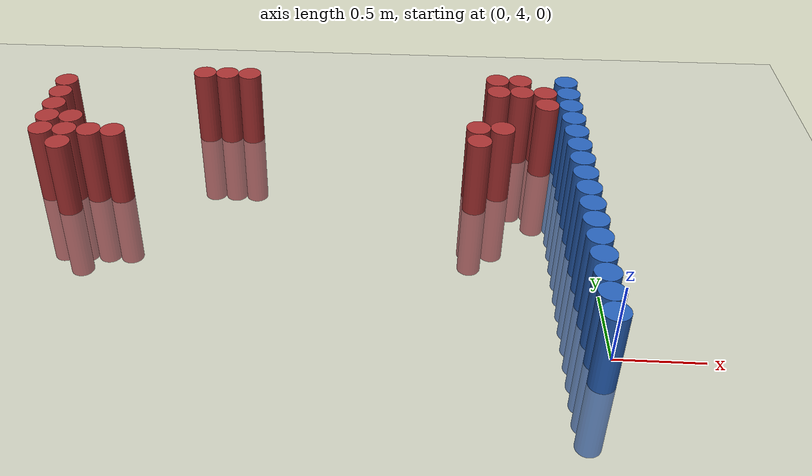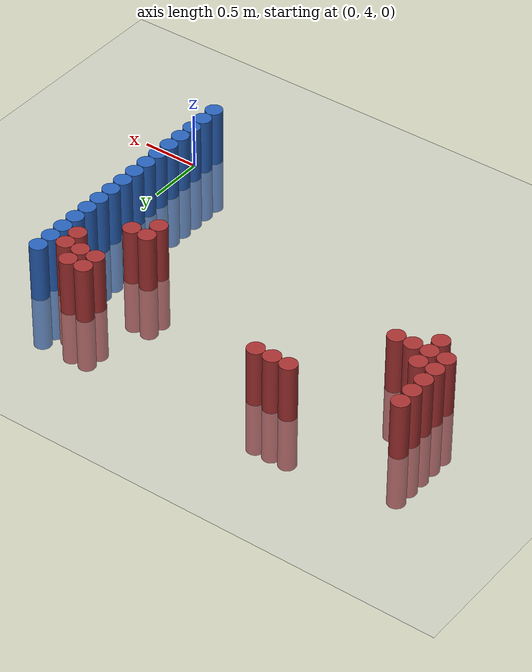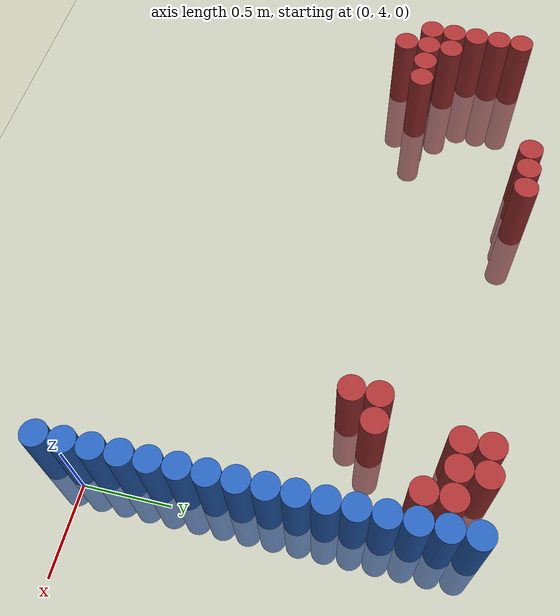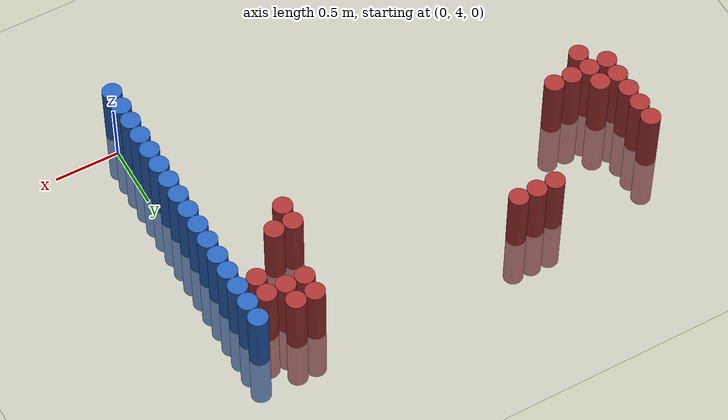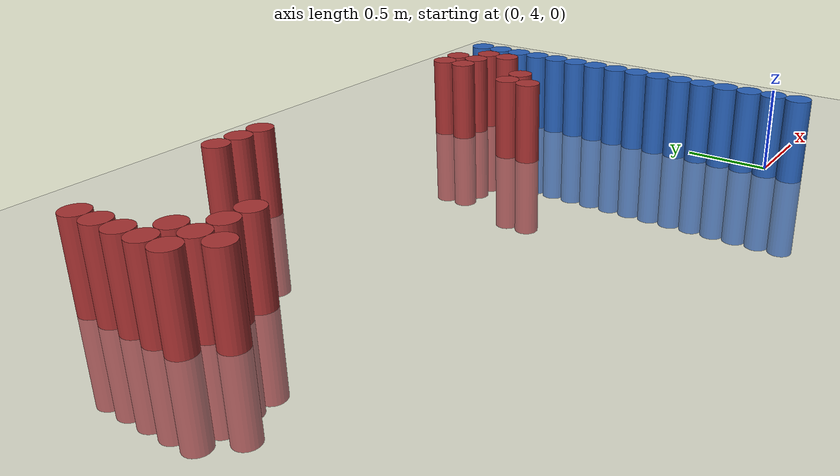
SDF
<sdf version="1.6">
 <world name="default">
  <model name="ground_plane">
   <static>1</static>
   <link name="link">
    <collision name="collision">
     <geometry><plane><normal>0 0 1</normal><size>100 100</size></plane></geometry>
     <surface><friction><ode><mu>100</mu><mu2>50</mu2></ode></friction></surface>
    </collision>
    <visual name="visual">
     <cast_shadows>0</cast_shadows>
     <geometry><plane><normal>0 0 1</normal><size>100 100</size></plane></geometry>
     <material>
      <script><uri>file://media/materials/scripts/gazebo.material</uri><name>Gazebo/Grey</name></script>
     </material>
    </visual>
   </link>
  </model>
  <model name="unit_cylinder_78">
   <static>1</static>
   <pose>-0.075000 3.825000 0.000000 0.000000 0.000000 0.000000</pose>
   <link name="link">
    <inertial>
     <mass>1</mass>
     <inertia><ixx>0.145833</ixx><ixy>0</ixy><ixz>0</ixz><iyy>0.145833</iyy><iyz>0</iyz><izz>0.125</izz></inertia>
    </inertial>
    <collision name="collision">
     <geometry><cylinder><radius>0.075000</radius><length>1</length></cylinder></geometry>
    </collision>
    <visual name="visual">
     <geometry><cylinder><radius>0.075000</radius><length>1</length></cylinder></geometry>
     <material>
      <ambient>0.152000 0.379000 0.720000 1</ambient>
      <diffuse>0.152000 0.379000 0.720000 1</diffuse>
     </material>
     <material>
      <script><name>Gazebo/Grey</name><uri>file://media/materials/scripts/gazebo.material</uri></script>
     </material>
    </visual>
    <sensor name="sensor_contact" type="contact"><contact><collision>collision</collision></contact></sensor>
   </link>
   <plugin filename="gz-sim-touchplugin-system" name="gz::sim::systems::TouchPlugin">
    <target>robot</target>
    <namespace>robot</namespace>
    <time>0.001</time>
    <enabled>true</enabled>
   </plugin>
  </model>
  <model name="unit_cylinder_80">
   <static>1</static>
   <pose>-0.075000 3.975000 0.000000 0.000000 0.000000 0.000000</pose>
   <link name="link">
    <inertial>
     <mass>1</mass>
     <inertia><ixx>0.145833</ixx><ixy>0</ixy><ixz>0</ixz><iyy>0.145833</iyy><iyz>0</iyz><izz>0.125</izz></inertia>
    </inertial>
    <collision name="collision">
     <geometry><cylinder><radius>0.075000</radius><length>1</length></cylinder></geometry>
    </collision>
    <visual name="visual">
     <geometry><cylinder><radius>0.075000</radius><length>1</length></cylinder></geometry>
     <material>
      <ambient>0.152000 0.379000 0.720000 1</ambient>
      <diffuse>0.152000 0.379000 0.720000 1</diffuse>
     </material>
     <material>
      <script><name>Gazebo/Grey</name><uri>file://media/materials/scripts/gazebo.material</uri></script>
     </material>
    </visual>
    <sensor name="sensor_contact" type="contact"><contact><collision>collision</collision></contact></sensor>
   </link>
   <plugin filename="gz-sim-touchplugin-system" name="gz::sim::systems::TouchPlugin">
    <target>robot</target>
    <namespace>robot</namespace>
    <time>0.001</time>
    <enabled>true</enabled>
   </plugin>
  </model>
  <model name="unit_cylinder_82">
   <static>1</static>
   <pose>-0.075000 4.125000 0.000000 0.000000 0.000000 0.000000</pose>
   <link name="link">
    <inertial>
     <mass>1</mass>
     <inertia><ixx>0.145833</ixx><ixy>0</ixy><ixz>0</ixz><iyy>0.145833</iyy><iyz>0</iyz><izz>0.125</izz></inertia>
    </inertial>
    <collision name="collision">
     <geometry><cylinder><radius>0.075000</radius><length>1</length></cylinder></geometry>
    </collision>
    <visual name="visual">
     <geometry><cylinder><radius>0.075000</radius><length>1</length></cylinder></geometry>
     <material>
      <ambient>0.152000 0.379000 0.720000 1</ambient>
      <diffuse>0.152000 0.379000 0.720000 1</diffuse>
     </material>
     <material>
      <script><name>Gazebo/Grey</name><uri>file://media/materials/scripts/gazebo.material</uri></script>
     </material>
    </visual>
    <sensor name="sensor_contact" type="contact"><contact><collision>collision</collision></contact></sensor>
   </link>
   <plugin filename="gz-sim-touchplugin-system" name="gz::sim::systems::TouchPlugin">
    <target>robot</target>
    <namespace>robot</namespace>
    <time>0.001</time>
    <enabled>true</enabled>
   </plugin>
  </model>
  <model name="unit_cylinder_84">
   <static>1</static>
   <pose>-0.075000 4.275000 0.000000 0.000000 0.000000 0.000000</pose>
   <link name="link">
    <inertial>
     <mass>1</mass>
     <inertia><ixx>0.145833</ixx><ixy>0</ixy><ixz>0</ixz><iyy>0.145833</iyy><iyz>0</iyz><izz>0.125</izz></inertia>
    </inertial>
    <collision name="collision">
     <geometry><cylinder><radius>0.075000</radius><length>1</length></cylinder></geometry>
    </collision>
    <visual name="visual">
     <geometry><cylinder><radius>0.075000</radius><length>1</length></cylinder></geometry>
     <material>
      <ambient>0.152000 0.379000 0.720000 1</ambient>
      <diffuse>0.152000 0.379000 0.720000 1</diffuse>
     </material>
     <material>
      <script><name>Gazebo/Grey</name><uri>file://media/materials/scripts/gazebo.material</uri></script>
     </material>
    </visual>
    <sensor name="sensor_contact" type="contact"><contact><collision>collision</collision></contact></sensor>
   </link>
   <plugin filename="gz-sim-touchplugin-system" name="gz::sim::systems::TouchPlugin">
    <target>robot</target>
    <namespace>robot</namespace>
    <time>0.001</time>
    <enabled>true</enabled>
   </plugin>
  </model>
  <model name="unit_cylinder_86">
   <static>1</static>
   <pose>-0.075000 4.425000 0.000000 0.000000 0.000000 0.000000</pose>
   <link name="link">
    <inertial>
     <mass>1</mass>
     <inertia><ixx>0.145833</ixx><ixy>0</ixy><ixz>0</ixz><iyy>0.145833</iyy><iyz>0</iyz><izz>0.125</izz></inertia>
    </inertial>
    <collision name="collision">
     <geometry><cylinder><radius>0.075000</radius><length>1</length></cylinder></geometry>
    </collision>
    <visual name="visual">
     <geometry><cylinder><radius>0.075000</radius><length>1</length></cylinder></geometry>
     <material>
      <ambient>0.152000 0.379000 0.720000 1</ambient>
      <diffuse>0.152000 0.379000 0.720000 1</diffuse>
     </material>
     <material>
      <script><name>Gazebo/Grey</name><uri>file://media/materials/scripts/gazebo.material</uri></script>
     </material>
    </visual>
    <sensor name="sensor_contact" type="contact"><contact><collision>collision</collision></contact></sensor>
   </link>
   <plugin filename="gz-sim-touchplugin-system" name="gz::sim::systems::TouchPlugin">
    <target>robot</target>
    <namespace>robot</namespace>
    <time>0.001</time>
    <enabled>true</enabled>
   </plugin>
  </model>
  <model name="unit_cylinder_88">
   <static>1</static>
   <pose>-0.075000 4.575000 0.000000 0.000000 0.000000 0.000000</pose>
   <link name="link">
    <inertial>
     <mass>1</mass>
     <inertia><ixx>0.145833</ixx><ixy>0</ixy><ixz>0</ixz><iyy>0.145833</iyy><iyz>0</iyz><izz>0.125</izz></inertia>
    </inertial>
    <collision name="collision">
     <geometry><cylinder><radius>0.075000</radius><length>1</length></cylinder></geometry>
    </collision>
    <visual name="visual">
     <geometry><cylinder><radius>0.075000</radius><length>1</length></cylinder></geometry>
     <material>
      <ambient>0.152000 0.379000 0.720000 1</ambient>
      <diffuse>0.152000 0.379000 0.720000 1</diffuse>
     </material>
     <material>
      <script><name>Gazebo/Grey</name><uri>file://media/materials/scripts/gazebo.material</uri></script>
     </material>
    </visual>
    <sensor name="sensor_contact" type="contact"><contact><collision>collision</collision></contact></sensor>
   </link>
   <plugin filename="gz-sim-touchplugin-system" name="gz::sim::systems::TouchPlugin">
    <target>robot</target>
    <namespace>robot</namespace>
    <time>0.001</time>
    <enabled>true</enabled>
   </plugin>
  </model>
  <model name="unit_cylinder_90">
   <static>1</static>
   <pose>-0.075000 4.725000 0.000000 0.000000 0.000000 0.000000</pose>
   <link name="link">
    <inertial>
     <mass>1</mass>
     <inertia><ixx>0.145833</ixx><ixy>0</ixy><ixz>0</ixz><iyy>0.145833</iyy><iyz>0</iyz><izz>0.125</izz></inertia>
    </inertial>
    <collision name="collision">
     <geometry><cylinder><radius>0.075000</radius><length>1</length></cylinder></geometry>
    </collision>
    <visual name="visual">
     <geometry><cylinder><radius>0.075000</radius><length>1</length></cylinder></geometry>
     <material>
      <ambient>0.152000 0.379000 0.720000 1</ambient>
      <diffuse>0.152000 0.379000 0.720000 1</diffuse>
     </material>
     <material>
      <script><name>Gazebo/Grey</name><uri>file://media/materials/scripts/gazebo.material</uri></script>
     </material>
    </visual>
    <sensor name="sensor_contact" type="contact"><contact><collision>collision</collision></contact></sensor>
   </link>
   <plugin filename="gz-sim-touchplugin-system" name="gz::sim::systems::TouchPlugin">
    <target>robot</target>
    <namespace>robot</namespace>
    <time>0.001</time>
    <enabled>true</enabled>
   </plugin>
  </model>
  <model name="unit_cylinder_92">
   <static>1</static>
   <pose>-0.075000 4.875000 0.000000 0.000000 0.000000 0.000000</pose>
   <link name="link">
    <inertial>
     <mass>1</mass>
     <inertia><ixx>0.145833</ixx><ixy>0</ixy><ixz>0</ixz><iyy>0.145833</iyy><iyz>0</iyz><izz>0.125</izz></inertia>
    </inertial>
    <collision name="collision">
     <geometry><cylinder><radius>0.075000</radius><length>1</length></cylinder></geometry>
    </collision>
    <visual name="visual">
     <geometry><cylinder><radius>0.075000</radius><length>1</length></cylinder></geometry>
     <material>
      <ambient>0.152000 0.379000 0.720000 1</ambient>
      <diffuse>0.152000 0.379000 0.720000 1</diffuse>
     </material>
     <material>
      <script><name>Gazebo/Grey</name><uri>file://media/materials/scripts/gazebo.material</uri></script>
     </material>
    </visual>
    <sensor name="sensor_contact" type="contact"><contact><collision>collision</collision></contact></sensor>
   </link>
   <plugin filename="gz-sim-touchplugin-system" name="gz::sim::systems::TouchPlugin">
    <target>robot</target>
    <namespace>robot</namespace>
    <time>0.001</time>
    <enabled>true</enabled>
   </plugin>
  </model>
  <model name="unit_cylinder_94">
   <static>1</static>
   <pose>-0.075000 5.025000 0.000000 0.000000 0.000000 0.000000</pose>
   <link name="link">
    <inertial>
     <mass>1</mass>
     <inertia><ixx>0.145833</ixx><ixy>0</ixy><ixz>0</ixz><iyy>0.145833</iyy><iyz>0</iyz><izz>0.125</izz></inertia>
    </inertial>
    <collision name="collision">
     <geometry><cylinder><radius>0.075000</radius><length>1</length></cylinder></geometry>
    </collision>
    <visual name="visual">
     <geometry><cylinder><radius>0.075000</radius><length>1</length></cylinder></geometry>
     <material>
      <ambient>0.152000 0.379000 0.720000 1</ambient>
      <diffuse>0.152000 0.379000 0.720000 1</diffuse>
     </material>
     <material>
      <script><name>Gazebo/Grey</name><uri>file://media/materials/scripts/gazebo.material</uri></script>
     </material>
    </visual>
    <sensor name="sensor_contact" type="contact"><contact><collision>collision</collision></contact></sensor>
   </link>
   <plugin filename="gz-sim-touchplugin-system" name="gz::sim::systems::TouchPlugin">
    <target>robot</target>
    <namespace>robot</namespace>
    <time>0.001</time>
    <enabled>true</enabled>
   </plugin>
  </model>
  <model name="unit_cylinder_175">
   <static>1</static>
   <pose>-3.375000 5.325000 0.000000 0.000000 0.000000 0.000000</pose>
   <link name="link">
    <inertial>
     <mass>1</mass>
     <inertia><ixx>0.145833</ixx><ixy>0</ixy><ixz>0</ixz><iyy>0.145833</iyy><iyz>0</iyz><izz>0.125</izz></inertia>
    </inertial>
    <collision name="collision">
     <geometry><cylinder><radius>0.075000</radius><length>1</length></cylinder></geometry>
    </collision>
    <visual name="visual">
     <geometry><cylinder><radius>0.075000</radius><length>1</length></cylinder></geometry>
     <material>
      <ambient>0.648000 0.192000 0.192000 1</ambient>
      <diffuse>0.648000 0.192000 0.192000 1</diffuse>
     </material>
     <material>
      <script><name>Gazebo/Grey</name><uri>file://media/materials/scripts/gazebo.material</uri></script>
     </material>
    </visual>
    <sensor name="sensor_contact" type="contact"><contact><collision>collision</collision></contact></sensor>
   </link>
   <plugin filename="gz-sim-touchplugin-system" name="gz::sim::systems::TouchPlugin">
    <target>robot</target>
    <namespace>robot</namespace>
    <time>0.001</time>
    <enabled>true</enabled>
   </plugin>
  </model>
  <model name="unit_cylinder_176">
   <static>1</static>
   <pose>-3.375000 5.475000 0.000000 0.000000 0.000000 0.000000</pose>
   <link name="link">
    <inertial>
     <mass>1</mass>
     <inertia><ixx>0.145833</ixx><ixy>0</ixy><ixz>0</ixz><iyy>0.145833</iyy><iyz>0</iyz><izz>0.125</izz></inertia>
    </inertial>
    <collision name="collision">
     <geometry><cylinder><radius>0.075000</radius><length>1</length></cylinder></geometry>
    </collision>
    <visual name="visual">
     <geometry><cylinder><radius>0.075000</radius><length>1</length></cylinder></geometry>
     <material>
      <ambient>0.648000 0.192000 0.192000 1</ambient>
      <diffuse>0.648000 0.192000 0.192000 1</diffuse>
     </material>
     <material>
      <script><name>Gazebo/Grey</name><uri>file://media/materials/scripts/gazebo.material</uri></script>
     </material>
    </visual>
    <sensor name="sensor_contact" type="contact"><contact><collision>collision</collision></contact></sensor>
   </link>
   <plugin filename="gz-sim-touchplugin-system" name="gz::sim::systems::TouchPlugin">
    <target>robot</target>
    <namespace>robot</namespace>
    <time>0.001</time>
    <enabled>true</enabled>
   </plugin>
  </model>
  <model name="unit_cylinder_177">
   <static>1</static>
   <pose>-3.375000 5.625000 0.000000 0.000000 0.000000 0.000000</pose>
   <link name="link">
    <inertial>
     <mass>1</mass>
     <inertia><ixx>0.145833</ixx><ixy>0</ixy><ixz>0</ixz><iyy>0.145833</iyy><iyz>0</iyz><izz>0.125</izz></inertia>
    </inertial>
    <collision name="collision">
     <geometry><cylinder><radius>0.075000</radius><length>1</length></cylinder></geometry>
    </collision>
    <visual name="visual">
     <geometry><cylinder><radius>0.075000</radius><length>1</length></cylinder></geometry>
     <material>
      <ambient>0.648000 0.192000 0.192000 1</ambient>
      <diffuse>0.648000 0.192000 0.192000 1</diffuse>
     </material>
     <material>
      <script><name>Gazebo/Grey</name><uri>file://media/materials/scripts/gazebo.material</uri></script>
     </material>
    </visual>
    <sensor name="sensor_contact" type="contact"><contact><collision>collision</collision></contact></sensor>
   </link>
   <plugin filename="gz-sim-touchplugin-system" name="gz::sim::systems::TouchPlugin">
    <target>robot</target>
    <namespace>robot</namespace>
    <time>0.001</time>
    <enabled>true</enabled>
   </plugin>
  </model>
  <model name="unit_cylinder_178">
   <static>1</static>
   <pose>-3.375000 5.775000 0.000000 0.000000 0.000000 0.000000</pose>
   <link name="link">
    <inertial>
     <mass>1</mass>
     <inertia><ixx>0.145833</ixx><ixy>0</ixy><ixz>0</ixz><iyy>0.145833</iyy><iyz>0</iyz><izz>0.125</izz></inertia>
    </inertial>
    <collision name="collision">
     <geometry><cylinder><radius>0.075000</radius><length>1</length></cylinder></geometry>
    </collision>
    <visual name="visual">
     <geometry><cylinder><radius>0.075000</radius><length>1</length></cylinder></geometry>
     <material>
      <ambient>0.648000 0.192000 0.192000 1</ambient>
      <diffuse>0.648000 0.192000 0.192000 1</diffuse>
     </material>
     <material>
      <script><name>Gazebo/Grey</name><uri>file://media/materials/scripts/gazebo.material</uri></script>
     </material>
    </visual>
    <sensor name="sensor_contact" type="contact"><contact><collision>collision</collision></contact></sensor>
   </link>
   <plugin filename="gz-sim-touchplugin-system" name="gz::sim::systems::TouchPlugin">
    <target>robot</target>
    <namespace>robot</namespace>
    <time>0.001</time>
    <enabled>true</enabled>
   </plugin>
  </model>
  <model name="unit_cylinder_179">
   <static>1</static>
   <pose>-3.375000 5.925000 0.000000 0.000000 0.000000 0.000000</pose>
   <link name="link">
    <inertial>
     <mass>1</mass>
     <inertia><ixx>0.145833</ixx><ixy>0</ixy><ixz>0</ixz><iyy>0.145833</iyy><iyz>0</iyz><izz>0.125</izz></inertia>
    </inertial>
    <collision name="collision">
     <geometry><cylinder><radius>0.075000</radius><length>1</length></cylinder></geometry>
    </collision>
    <visual name="visual">
     <geometry><cylinder><radius>0.075000</radius><length>1</length></cylinder></geometry>
     <material>
      <ambient>0.648000 0.192000 0.192000 1</ambient>
      <diffuse>0.648000 0.192000 0.192000 1</diffuse>
     </material>
     <material>
      <script><name>Gazebo/Grey</name><uri>file://media/materials/scripts/gazebo.material</uri></script>
     </material>
    </visual>
    <sensor name="sensor_contact" type="contact"><contact><collision>collision</collision></contact></sensor>
   </link>
   <plugin filename="gz-sim-touchplugin-system" name="gz::sim::systems::TouchPlugin">
    <target>robot</target>
    <namespace>robot</namespace>
    <time>0.001</time>
    <enabled>true</enabled>
   </plugin>
  </model>
  <model name="unit_cylinder_182">
   <static>1</static>
   <pose>-3.225000 5.175000 0.000000 0.000000 0.000000 0.000000</pose>
   <link name="link">
    <inertial>
     <mass>1</mass>
     <inertia><ixx>0.145833</ixx><ixy>0</ixy><ixz>0</ixz><iyy>0.145833</iyy><iyz>0</iyz><izz>0.125</izz></inertia>
    </inertial>
    <collision name="collision">
     <geometry><cylinder><radius>0.075000</radius><length>1</length></cylinder></geometry>
    </collision>
    <visual name="visual">
     <geometry><cylinder><radius>0.075000</radius><length>1</length></cylinder></geometry>
     <material>
      <ambient>0.648000 0.192000 0.192000 1</ambient>
      <diffuse>0.648000 0.192000 0.192000 1</diffuse>
     </material>
     <material>
      <script><name>Gazebo/Grey</name><uri>file://media/materials/scripts/gazebo.material</uri></script>
     </material>
    </visual>
    <sensor name="sensor_contact" type="contact"><contact><collision>collision</collision></contact></sensor>
   </link>
   <plugin filename="gz-sim-touchplugin-system" name="gz::sim::systems::TouchPlugin">
    <target>robot</target>
    <namespace>robot</namespace>
    <time>0.001</time>
    <enabled>true</enabled>
   </plugin>
  </model>
  <model name="unit_cylinder_183">
   <static>1</static>
   <pose>-3.225000 5.325000 0.000000 0.000000 0.000000 0.000000</pose>
   <link name="link">
    <inertial>
     <mass>1</mass>
     <inertia><ixx>0.145833</ixx><ixy>0</ixy><ixz>0</ixz><iyy>0.145833</iyy><iyz>0</iyz><izz>0.125</izz></inertia>
    </inertial>
    <collision name="collision">
     <geometry><cylinder><radius>0.075000</radius><length>1</length></cylinder></geometry>
    </collision>
    <visual name="visual">
     <geometry><cylinder><radius>0.075000</radius><length>1</length></cylinder></geometry>
     <material>
      <ambient>0.648000 0.192000 0.192000 1</ambient>
      <diffuse>0.648000 0.192000 0.192000 1</diffuse>
     </material>
     <material>
      <script><name>Gazebo/Grey</name><uri>file://media/materials/scripts/gazebo.material</uri></script>
     </material>
    </visual>
    <sensor name="sensor_contact" type="contact"><contact><collision>collision</collision></contact></sensor>
   </link>
   <plugin filename="gz-sim-touchplugin-system" name="gz::sim::systems::TouchPlugin">
    <target>robot</target>
    <namespace>robot</namespace>
    <time>0.001</time>
    <enabled>true</enabled>
   </plugin>
  </model>
  <model name="unit_cylinder_184">
   <static>1</static>
   <pose>-3.225000 5.475000 0.000000 0.000000 0.000000 0.000000</pose>
   <link name="link">
    <inertial>
     <mass>1</mass>
     <inertia><ixx>0.145833</ixx><ixy>0</ixy><ixz>0</ixz><iyy>0.145833</iyy><iyz>0</iyz><izz>0.125</izz></inertia>
    </inertial>
    <collision name="collision">
     <geometry><cylinder><radius>0.075000</radius><length>1</length></cylinder></geometry>
    </collision>
    <visual name="visual">
     <geometry><cylinder><radius>0.075000</radius><length>1</length></cylinder></geometry>
     <material>
      <ambient>0.648000 0.192000 0.192000 1</ambient>
      <diffuse>0.648000 0.192000 0.192000 1</diffuse>
     </material>
     <material>
      <script><name>Gazebo/Grey</name><uri>file://media/materials/scripts/gazebo.material</uri></script>
     </material>
    </visual>
    <sensor name="sensor_contact" type="contact"><contact><collision>collision</collision></contact></sensor>
   </link>
   <plugin filename="gz-sim-touchplugin-system" name="gz::sim::systems::TouchPlugin">
    <target>robot</target>
    <namespace>robot</namespace>
    <time>0.001</time>
    <enabled>true</enabled>
   </plugin>
  </model>
  <model name="unit_cylinder_190">
   <static>1</static>
   <pose>-3.075000 5.325000 0.000000 0.000000 0.000000 0.000000</pose>
   <link name="link">
    <inertial>
     <mass>1</mass>
     <inertia><ixx>0.145833</ixx><ixy>0</ixy><ixz>0</ixz><iyy>0.145833</iyy><iyz>0</iyz><izz>0.125</izz></inertia>
    </inertial>
    <collision name="collision">
     <geometry><cylinder><radius>0.075000</radius><length>1</length></cylinder></geometry>
    </collision>
    <visual name="visual">
     <geometry><cylinder><radius>0.075000</radius><length>1</length></cylinder></geometry>
     <material>
      <ambient>0.648000 0.192000 0.192000 1</ambient>
      <diffuse>0.648000 0.192000 0.192000 1</diffuse>
     </material>
     <material>
      <script><name>Gazebo/Grey</name><uri>file://media/materials/scripts/gazebo.material</uri></script>
     </material>
    </visual>
    <sensor name="sensor_contact" type="contact"><contact><collision>collision</collision></contact></sensor>
   </link>
   <plugin filename="gz-sim-touchplugin-system" name="gz::sim::systems::TouchPlugin">
    <target>robot</target>
    <namespace>robot</namespace>
    <time>0.001</time>
    <enabled>true</enabled>
   </plugin>
  </model>
  <model name="unit_cylinder_196">
   <static>1</static>
   <pose>-2.925000 5.325000 0.000000 0.000000 0.000000 0.000000</pose>
   <link name="link">
    <inertial>
     <mass>1</mass>
     <inertia><ixx>0.145833</ixx><ixy>0</ixy><ixz>0</ixz><iyy>0.145833</iyy><iyz>0</iyz><izz>0.125</izz></inertia>
    </inertial>
    <collision name="collision">
     <geometry><cylinder><radius>0.075000</radius><length>1</length></cylinder></geometry>
    </collision>
    <visual name="visual">
     <geometry><cylinder><radius>0.075000</radius><length>1</length></cylinder></geometry>
     <material>
      <ambient>0.648000 0.192000 0.192000 1</ambient>
      <diffuse>0.648000 0.192000 0.192000 1</diffuse>
     </material>
     <material>
      <script><name>Gazebo/Grey</name><uri>file://media/materials/scripts/gazebo.material</uri></script>
     </material>
    </visual>
    <sensor name="sensor_contact" type="contact"><contact><collision>collision</collision></contact></sensor>
   </link>
   <plugin filename="gz-sim-touchplugin-system" name="gz::sim::systems::TouchPlugin">
    <target>robot</target>
    <namespace>robot</namespace>
    <time>0.001</time>
    <enabled>true</enabled>
   </plugin>
  </model>
  <model name="unit_cylinder_205">
   <static>1</static>
   <pose>-2.475000 6.075000 0.000000 0.000000 0.000000 0.000000</pose>
   <link name="link">
    <inertial>
     <mass>1</mass>
     <inertia><ixx>0.145833</ixx><ixy>0</ixy><ixz>0</ixz><iyy>0.145833</iyy><iyz>0</iyz><izz>0.125</izz></inertia>
    </inertial>
    <collision name="collision">
     <geometry><cylinder><radius>0.075000</radius><length>1</length></cylinder></geometry>
    </collision>
    <visual name="visual">
     <geometry><cylinder><radius>0.075000</radius><length>1</length></cylinder></geometry>
     <material>
      <ambient>0.648000 0.192000 0.192000 1</ambient>
      <diffuse>0.648000 0.192000 0.192000 1</diffuse>
     </material>
     <material>
      <script><name>Gazebo/Grey</name><uri>file://media/materials/scripts/gazebo.material</uri></script>
     </material>
    </visual>
    <sensor name="sensor_contact" type="contact"><contact><collision>collision</collision></contact></sensor>
   </link>
   <plugin filename="gz-sim-touchplugin-system" name="gz::sim::systems::TouchPlugin">
    <target>robot</target>
    <namespace>robot</namespace>
    <time>0.001</time>
    <enabled>true</enabled>
   </plugin>
  </model>
  <model name="unit_cylinder_207">
   <static>1</static>
   <pose>-2.325000 6.075000 0.000000 0.000000 0.000000 0.000000</pose>
   <link name="link">
    <inertial>
     <mass>1</mass>
     <inertia><ixx>0.145833</ixx><ixy>0</ixy><ixz>0</ixz><iyy>0.145833</iyy><iyz>0</iyz><izz>0.125</izz></inertia>
    </inertial>
    <collision name="collision">
     <geometry><cylinder><radius>0.075000</radius><length>1</length></cylinder></geometry>
    </collision>
    <visual name="visual">
     <geometry><cylinder><radius>0.075000</radius><length>1</length></cylinder></geometry>
     <material>
      <ambient>0.648000 0.192000 0.192000 1</ambient>
      <diffuse>0.648000 0.192000 0.192000 1</diffuse>
     </material>
     <material>
      <script><name>Gazebo/Grey</name><uri>file://media/materials/scripts/gazebo.material</uri></script>
     </material>
    </visual>
    <sensor name="sensor_contact" type="contact"><contact><collision>collision</collision></contact></sensor>
   </link>
   <plugin filename="gz-sim-touchplugin-system" name="gz::sim::systems::TouchPlugin">
    <target>robot</target>
    <namespace>robot</namespace>
    <time>0.001</time>
    <enabled>true</enabled>
   </plugin>
  </model>
  <model name="unit_cylinder_211">
   <static>1</static>
   <pose>-2.175000 6.075000 0.000000 0.000000 0.000000 0.000000</pose>
   <link name="link">
    <inertial>
     <mass>1</mass>
     <inertia><ixx>0.145833</ixx><ixy>0</ixy><ixz>0</ixz><iyy>0.145833</iyy><iyz>0</iyz><izz>0.125</izz></inertia>
    </inertial>
    <collision name="collision">
     <geometry><cylinder><radius>0.075000</radius><length>1</length></cylinder></geometry>
    </collision>
    <visual name="visual">
     <geometry><cylinder><radius>0.075000</radius><length>1</length></cylinder></geometry>
     <material>
      <ambient>0.648000 0.192000 0.192000 1</ambient>
      <diffuse>0.648000 0.192000 0.192000 1</diffuse>
     </material>
     <material>
      <script><name>Gazebo/Grey</name><uri>file://media/materials/scripts/gazebo.material</uri></script>
     </material>
    </visual>
    <sensor name="sensor_contact" type="contact"><contact><collision>collision</collision></contact></sensor>
   </link>
   <plugin filename="gz-sim-touchplugin-system" name="gz::sim::systems::TouchPlugin">
    <target>robot</target>
    <namespace>robot</namespace>
    <time>0.001</time>
    <enabled>true</enabled>
   </plugin>
  </model>
  <model name="unit_cylinder_241">
   <static>1</static>
   <pose>-0.675000 5.325000 0.000000 0.000000 0.000000 0.000000</pose>
   <link name="link">
    <inertial>
     <mass>1</mass>
     <inertia><ixx>0.145833</ixx><ixy>0</ixy><ixz>0</ixz><iyy>0.145833</iyy><iyz>0</iyz><izz>0.125</izz></inertia>
    </inertial>
    <collision name="collision">
     <geometry><cylinder><radius>0.075000</radius><length>1</length></cylinder></geometry>
    </collision>
    <visual name="visual">
     <geometry><cylinder><radius>0.075000</radius><length>1</length></cylinder></geometry>
     <material>
      <ambient>0.648000 0.192000 0.192000 1</ambient>
      <diffuse>0.648000 0.192000 0.192000 1</diffuse>
     </material>
     <material>
      <script><name>Gazebo/Grey</name><uri>file://media/materials/scripts/gazebo.material</uri></script>
     </material>
    </visual>
    <sensor name="sensor_contact" type="contact"><contact><collision>collision</collision></contact></sensor>
   </link>
   <plugin filename="gz-sim-touchplugin-system" name="gz::sim::systems::TouchPlugin">
    <target>robot</target>
    <namespace>robot</namespace>
    <time>0.001</time>
    <enabled>true</enabled>
   </plugin>
  </model>
  <model name="unit_cylinder_242">
   <static>1</static>
   <pose>-0.675000 5.475000 0.000000 0.000000 0.000000 0.000000</pose>
   <link name="link">
    <inertial>
     <mass>1</mass>
     <inertia><ixx>0.145833</ixx><ixy>0</ixy><ixz>0</ixz><iyy>0.145833</iyy><iyz>0</iyz><izz>0.125</izz></inertia>
    </inertial>
    <collision name="collision">
     <geometry><cylinder><radius>0.075000</radius><length>1</length></cylinder></geometry>
    </collision>
    <visual name="visual">
     <geometry><cylinder><radius>0.075000</radius><length>1</length></cylinder></geometry>
     <material>
      <ambient>0.648000 0.192000 0.192000 1</ambient>
      <diffuse>0.648000 0.192000 0.192000 1</diffuse>
     </material>
     <material>
      <script><name>Gazebo/Grey</name><uri>file://media/materials/scripts/gazebo.material</uri></script>
     </material>
    </visual>
    <sensor name="sensor_contact" type="contact"><contact><collision>collision</collision></contact></sensor>
   </link>
   <plugin filename="gz-sim-touchplugin-system" name="gz::sim::systems::TouchPlugin">
    <target>robot</target>
    <namespace>robot</namespace>
    <time>0.001</time>
    <enabled>true</enabled>
   </plugin>
  </model>
  <model name="unit_cylinder_247">
   <static>1</static>
   <pose>-0.525000 5.475000 0.000000 0.000000 0.000000 0.000000</pose>
   <link name="link">
    <inertial>
     <mass>1</mass>
     <inertia><ixx>0.145833</ixx><ixy>0</ixy><ixz>0</ixz><iyy>0.145833</iyy><iyz>0</iyz><izz>0.125</izz></inertia>
    </inertial>
    <collision name="collision">
     <geometry><cylinder><radius>0.075000</radius><length>1</length></cylinder></geometry>
    </collision>
    <visual name="visual">
     <geometry><cylinder><radius>0.075000</radius><length>1</length></cylinder></geometry>
     <material>
      <ambient>0.648000 0.192000 0.192000 1</ambient>
      <diffuse>0.648000 0.192000 0.192000 1</diffuse>
     </material>
     <material>
      <script><name>Gazebo/Grey</name><uri>file://media/materials/scripts/gazebo.material</uri></script>
     </material>
    </visual>
    <sensor name="sensor_contact" type="contact"><contact><collision>collision</collision></contact></sensor>
   </link>
   <plugin filename="gz-sim-touchplugin-system" name="gz::sim::systems::TouchPlugin">
    <target>robot</target>
    <namespace>robot</namespace>
    <time>0.001</time>
    <enabled>true</enabled>
   </plugin>
  </model>
  <model name="unit_cylinder_248">
   <static>1</static>
   <pose>-0.525000 5.925000 0.000000 0.000000 0.000000 0.000000</pose>
   <link name="link">
    <inertial>
     <mass>1</mass>
     <inertia><ixx>0.145833</ixx><ixy>0</ixy><ixz>0</ixz><iyy>0.145833</iyy><iyz>0</iyz><izz>0.125</izz></inertia>
    </inertial>
    <collision name="collision">
     <geometry><cylinder><radius>0.075000</radius><length>1</length></cylinder></geometry>
    </collision>
    <visual name="visual">
     <geometry><cylinder><radius>0.075000</radius><length>1</length></cylinder></geometry>
     <material>
      <ambient>0.648000 0.192000 0.192000 1</ambient>
      <diffuse>0.648000 0.192000 0.192000 1</diffuse>
     </material>
     <material>
      <script><name>Gazebo/Grey</name><uri>file://media/materials/scripts/gazebo.material</uri></script>
     </material>
    </visual>
    <sensor name="sensor_contact" type="contact"><contact><collision>collision</collision></contact></sensor>
   </link>
   <plugin filename="gz-sim-touchplugin-system" name="gz::sim::systems::TouchPlugin">
    <target>robot</target>
    <namespace>robot</namespace>
    <time>0.001</time>
    <enabled>true</enabled>
   </plugin>
  </model>
  <model name="unit_cylinder_249">
   <static>1</static>
   <pose>-0.525000 6.075000 0.000000 0.000000 0.000000 0.000000</pose>
   <link name="link">
    <inertial>
     <mass>1</mass>
     <inertia><ixx>0.145833</ixx><ixy>0</ixy><ixz>0</ixz><iyy>0.145833</iyy><iyz>0</iyz><izz>0.125</izz></inertia>
    </inertial>
    <collision name="collision">
     <geometry><cylinder><radius>0.075000</radius><length>1</length></cylinder></geometry>
    </collision>
    <visual name="visual">
     <geometry><cylinder><radius>0.075000</radius><length>1</length></cylinder></geometry>
     <material>
      <ambient>0.648000 0.192000 0.192000 1</ambient>
      <diffuse>0.648000 0.192000 0.192000 1</diffuse>
     </material>
     <material>
      <script><name>Gazebo/Grey</name><uri>file://media/materials/scripts/gazebo.material</uri></script>
     </material>
    </visual>
    <sensor name="sensor_contact" type="contact"><contact><collision>collision</collision></contact></sensor>
   </link>
   <plugin filename="gz-sim-touchplugin-system" name="gz::sim::systems::TouchPlugin">
    <target>robot</target>
    <namespace>robot</namespace>
    <time>0.001</time>
    <enabled>true</enabled>
   </plugin>
  </model>
  <model name="unit_cylinder_259">
   <static>1</static>
   <pose>-0.375000 5.925000 0.000000 0.000000 0.000000 0.000000</pose>
   <link name="link">
    <inertial>
     <mass>1</mass>
     <inertia><ixx>0.145833</ixx><ixy>0</ixy><ixz>0</ixz><iyy>0.145833</iyy><iyz>0</iyz><izz>0.125</izz></inertia>
    </inertial>
    <collision name="collision">
     <geometry><cylinder><radius>0.075000</radius><length>1</length></cylinder></geometry>
    </collision>
    <visual name="visual">
     <geometry><cylinder><radius>0.075000</radius><length>1</length></cylinder></geometry>
     <material>
      <ambient>0.648000 0.192000 0.192000 1</ambient>
      <diffuse>0.648000 0.192000 0.192000 1</diffuse>
     </material>
     <material>
      <script><name>Gazebo/Grey</name><uri>file://media/materials/scripts/gazebo.material</uri></script>
     </material>
    </visual>
    <sensor name="sensor_contact" type="contact"><contact><collision>collision</collision></contact></sensor>
   </link>
   <plugin filename="gz-sim-touchplugin-system" name="gz::sim::systems::TouchPlugin">
    <target>robot</target>
    <namespace>robot</namespace>
    <time>0.001</time>
    <enabled>true</enabled>
   </plugin>
  </model>
  <model name="unit_cylinder_260">
   <static>1</static>
   <pose>-0.375000 6.075000 0.000000 0.000000 0.000000 0.000000</pose>
   <link name="link">
    <inertial>
     <mass>1</mass>
     <inertia><ixx>0.145833</ixx><ixy>0</ixy><ixz>0</ixz><iyy>0.145833</iyy><iyz>0</iyz><izz>0.125</izz></inertia>
    </inertial>
    <collision name="collision">
     <geometry><cylinder><radius>0.075000</radius><length>1</length></cylinder></geometry>
    </collision>
    <visual name="visual">
     <geometry><cylinder><radius>0.075000</radius><length>1</length></cylinder></geometry>
     <material>
      <ambient>0.648000 0.192000 0.192000 1</ambient>
      <diffuse>0.648000 0.192000 0.192000 1</diffuse>
     </material>
     <material>
      <script><name>Gazebo/Grey</name><uri>file://media/materials/scripts/gazebo.material</uri></script>
     </material>
    </visual>
    <sensor name="sensor_contact" type="contact"><contact><collision>collision</collision></contact></sensor>
   </link>
   <plugin filename="gz-sim-touchplugin-system" name="gz::sim::systems::TouchPlugin">
    <target>robot</target>
    <namespace>robot</namespace>
    <time>0.001</time>
    <enabled>true</enabled>
   </plugin>
  </model>
  <model name="unit_cylinder_272">
   <static>1</static>
   <pose>-0.225000 5.775000 0.000000 0.000000 0.000000 0.000000</pose>
   <link name="link">
    <inertial>
     <mass>1</mass>
     <inertia><ixx>0.145833</ixx><ixy>0</ixy><ixz>0</ixz><iyy>0.145833</iyy><iyz>0</iyz><izz>0.125</izz></inertia>
    </inertial>
    <collision name="collision">
     <geometry><cylinder><radius>0.075000</radius><length>1</length></cylinder></geometry>
    </collision>
    <visual name="visual">
     <geometry><cylinder><radius>0.075000</radius><length>1</length></cylinder></geometry>
     <material>
      <ambient>0.648000 0.192000 0.192000 1</ambient>
      <diffuse>0.648000 0.192000 0.192000 1</diffuse>
     </material>
     <material>
      <script><name>Gazebo/Grey</name><uri>file://media/materials/scripts/gazebo.material</uri></script>
     </material>
    </visual>
    <sensor name="sensor_contact" type="contact"><contact><collision>collision</collision></contact></sensor>
   </link>
   <plugin filename="gz-sim-touchplugin-system" name="gz::sim::systems::TouchPlugin">
    <target>robot</target>
    <namespace>robot</namespace>
    <time>0.001</time>
    <enabled>true</enabled>
   </plugin>
  </model>
  <model name="unit_cylinder_273">
   <static>1</static>
   <pose>-0.225000 5.925000 0.000000 0.000000 0.000000 0.000000</pose>
   <link name="link">
    <inertial>
     <mass>1</mass>
     <inertia><ixx>0.145833</ixx><ixy>0</ixy><ixz>0</ixz><iyy>0.145833</iyy><iyz>0</iyz><izz>0.125</izz></inertia>
    </inertial>
    <collision name="collision">
     <geometry><cylinder><radius>0.075000</radius><length>1</length></cylinder></geometry>
    </collision>
    <visual name="visual">
     <geometry><cylinder><radius>0.075000</radius><length>1</length></cylinder></geometry>
     <material>
      <ambient>0.648000 0.192000 0.192000 1</ambient>
      <diffuse>0.648000 0.192000 0.192000 1</diffuse>
     </material>
     <material>
      <script><name>Gazebo/Grey</name><uri>file://media/materials/scripts/gazebo.material</uri></script>
     </material>
    </visual>
    <sensor name="sensor_contact" type="contact"><contact><collision>collision</collision></contact></sensor>
   </link>
   <plugin filename="gz-sim-touchplugin-system" name="gz::sim::systems::TouchPlugin">
    <target>robot</target>
    <namespace>robot</namespace>
    <time>0.001</time>
    <enabled>true</enabled>
   </plugin>
  </model>
  <model name="unit_cylinder_280">
   <static>1</static>
   <pose>-0.075000 5.175000 0.000000 0.000000 0.000000 0.000000</pose>
   <link name="link">
    <inertial>
     <mass>1</mass>
     <inertia><ixx>0.145833</ixx><ixy>0</ixy><ixz>0</ixz><iyy>0.145833</iyy><iyz>0</iyz><izz>0.125</izz></inertia>
    </inertial>
    <collision name="collision">
     <geometry><cylinder><radius>0.075000</radius><length>1</length></cylinder></geometry>
    </collision>
    <visual name="visual">
     <geometry><cylinder><radius>0.075000</radius><length>1</length></cylinder></geometry>
     <material>
      <ambient>0.152000 0.379000 0.720000 1</ambient>
      <diffuse>0.152000 0.379000 0.720000 1</diffuse>
     </material>
     <material>
      <script><name>Gazebo/Grey</name><uri>file://media/materials/scripts/gazebo.material</uri></script>
     </material>
    </visual>
    <sensor name="sensor_contact" type="contact"><contact><collision>collision</collision></contact></sensor>
   </link>
   <plugin filename="gz-sim-touchplugin-system" name="gz::sim::systems::TouchPlugin">
    <target>robot</target>
    <namespace>robot</namespace>
    <time>0.001</time>
    <enabled>true</enabled>
   </plugin>
  </model>
  <model name="unit_cylinder_281">
   <static>1</static>
   <pose>-0.075000 5.325000 0.000000 0.000000 0.000000 0.000000</pose>
   <link name="link">
    <inertial>
     <mass>1</mass>
     <inertia><ixx>0.145833</ixx><ixy>0</ixy><ixz>0</ixz><iyy>0.145833</iyy><iyz>0</iyz><izz>0.125</izz></inertia>
    </inertial>
    <collision name="collision">
     <geometry><cylinder><radius>0.075000</radius><length>1</length></cylinder></geometry>
    </collision>
    <visual name="visual">
     <geometry><cylinder><radius>0.075000</radius><length>1</length></cylinder></geometry>
     <material>
      <ambient>0.152000 0.379000 0.720000 1</ambient>
      <diffuse>0.152000 0.379000 0.720000 1</diffuse>
     </material>
     <material>
      <script><name>Gazebo/Grey</name><uri>file://media/materials/scripts/gazebo.material</uri></script>
     </material>
    </visual>
    <sensor name="sensor_contact" type="contact"><contact><collision>collision</collision></contact></sensor>
   </link>
   <plugin filename="gz-sim-touchplugin-system" name="gz::sim::systems::TouchPlugin">
    <target>robot</target>
    <namespace>robot</namespace>
    <time>0.001</time>
    <enabled>true</enabled>
   </plugin>
  </model>
  <model name="unit_cylinder_282">
   <static>1</static>
   <pose>-0.075000 5.475000 0.000000 0.000000 0.000000 0.000000</pose>
   <link name="link">
    <inertial>
     <mass>1</mass>
     <inertia><ixx>0.145833</ixx><ixy>0</ixy><ixz>0</ixz><iyy>0.145833</iyy><iyz>0</iyz><izz>0.125</izz></inertia>
    </inertial>
    <collision name="collision">
     <geometry><cylinder><radius>0.075000</radius><length>1</length></cylinder></geometry>
    </collision>
    <visual name="visual">
     <geometry><cylinder><radius>0.075000</radius><length>1</length></cylinder></geometry>
     <material>
      <ambient>0.152000 0.379000 0.720000 1</ambient>
      <diffuse>0.152000 0.379000 0.720000 1</diffuse>
     </material>
     <material>
      <script><name>Gazebo/Grey</name><uri>file://media/materials/scripts/gazebo.material</uri></script>
     </material>
    </visual>
    <sensor name="sensor_contact" type="contact"><contact><collision>collision</collision></contact></sensor>
   </link>
   <plugin filename="gz-sim-touchplugin-system" name="gz::sim::systems::TouchPlugin">
    <target>robot</target>
    <namespace>robot</namespace>
    <time>0.001</time>
    <enabled>true</enabled>
   </plugin>
  </model>
  <model name="unit_cylinder_283">
   <static>1</static>
   <pose>-0.075000 5.625000 0.000000 0.000000 0.000000 0.000000</pose>
   <link name="link">
    <inertial>
     <mass>1</mass>
     <inertia><ixx>0.145833</ixx><ixy>0</ixy><ixz>0</ixz><iyy>0.145833</iyy><iyz>0</iyz><izz>0.125</izz></inertia>
    </inertial>
    <collision name="collision">
     <geometry><cylinder><radius>0.075000</radius><length>1</length></cylinder></geometry>
    </collision>
    <visual name="visual">
     <geometry><cylinder><radius>0.075000</radius><length>1</length></cylinder></geometry>
     <material>
      <ambient>0.152000 0.379000 0.720000 1</ambient>
      <diffuse>0.152000 0.379000 0.720000 1</diffuse>
     </material>
     <material>
      <script><name>Gazebo/Grey</name><uri>file://media/materials/scripts/gazebo.material</uri></script>
     </material>
    </visual>
    <sensor name="sensor_contact" type="contact"><contact><collision>collision</collision></contact></sensor>
   </link>
   <plugin filename="gz-sim-touchplugin-system" name="gz::sim::systems::TouchPlugin">
    <target>robot</target>
    <namespace>robot</namespace>
    <time>0.001</time>
    <enabled>true</enabled>
   </plugin>
  </model>
  <model name="unit_cylinder_284">
   <static>1</static>
   <pose>-0.075000 5.775000 0.000000 0.000000 0.000000 0.000000</pose>
   <link name="link">
    <inertial>
     <mass>1</mass>
     <inertia><ixx>0.145833</ixx><ixy>0</ixy><ixz>0</ixz><iyy>0.145833</iyy><iyz>0</iyz><izz>0.125</izz></inertia>
    </inertial>
    <collision name="collision">
     <geometry><cylinder><radius>0.075000</radius><length>1</length></cylinder></geometry>
    </collision>
    <visual name="visual">
     <geometry><cylinder><radius>0.075000</radius><length>1</length></cylinder></geometry>
     <material>
      <ambient>0.152000 0.379000 0.720000 1</ambient>
      <diffuse>0.152000 0.379000 0.720000 1</diffuse>
     </material>
     <material>
      <script><name>Gazebo/Grey</name><uri>file://media/materials/scripts/gazebo.material</uri></script>
     </material>
    </visual>
    <sensor name="sensor_contact" type="contact"><contact><collision>collision</collision></contact></sensor>
   </link>
   <plugin filename="gz-sim-touchplugin-system" name="gz::sim::systems::TouchPlugin">
    <target>robot</target>
    <namespace>robot</namespace>
    <time>0.001</time>
    <enabled>true</enabled>
   </plugin>
  </model>
  <model name="unit_cylinder_285">
   <static>1</static>
   <pose>-0.075000 5.925000 0.000000 0.000000 0.000000 0.000000</pose>
   <link name="link">
    <inertial>
     <mass>1</mass>
     <inertia><ixx>0.145833</ixx><ixy>0</ixy><ixz>0</ixz><iyy>0.145833</iyy><iyz>0</iyz><izz>0.125</izz></inertia>
    </inertial>
    <collision name="collision">
     <geometry><cylinder><radius>0.075000</radius><length>1</length></cylinder></geometry>
    </collision>
    <visual name="visual">
     <geometry><cylinder><radius>0.075000</radius><length>1</length></cylinder></geometry>
     <material>
      <ambient>0.152000 0.379000 0.720000 1</ambient>
      <diffuse>0.152000 0.379000 0.720000 1</diffuse>
     </material>
     <material>
      <script><name>Gazebo/Grey</name><uri>file://media/materials/scripts/gazebo.material</uri></script>
     </material>
    </visual>
    <sensor name="sensor_contact" type="contact"><contact><collision>collision</collision></contact></sensor>
   </link>
   <plugin filename="gz-sim-touchplugin-system" name="gz::sim::systems::TouchPlugin">
    <target>robot</target>
    <namespace>robot</namespace>
    <time>0.001</time>
    <enabled>true</enabled>
   </plugin>
  </model>
  <model name="unit_cylinder_286">
   <static>1</static>
   <pose>-0.075000 6.075000 0.000000 0.000000 0.000000 0.000000</pose>
   <link name="link">
    <inertial>
     <mass>1</mass>
     <inertia><ixx>0.145833</ixx><ixy>0</ixy><ixz>0</ixz><iyy>0.145833</iyy><iyz>0</iyz><izz>0.125</izz></inertia>
    </inertial>
    <collision name="collision">
     <geometry><cylinder><radius>0.075000</radius><length>1</length></cylinder></geometry>
    </collision>
    <visual name="visual">
     <geometry><cylinder><radius>0.075000</radius><length>1</length></cylinder></geometry>
     <material>
      <ambient>0.152000 0.379000 0.720000 1</ambient>
      <diffuse>0.152000 0.379000 0.720000 1</diffuse>
     </material>
     <material>
      <script><name>Gazebo/Grey</name><uri>file://media/materials/scripts/gazebo.material</uri></script>
     </material>
    </visual>
    <sensor name="sensor_contact" type="contact"><contact><collision>collision</collision></contact></sensor>
   </link>
   <plugin filename="gz-sim-touchplugin-system" name="gz::sim::systems::TouchPlugin">
    <target>robot</target>
    <namespace>robot</namespace>
    <time>0.001</time>
    <enabled>true</enabled>
   </plugin>
  </model>
 </world>
</sdf>
